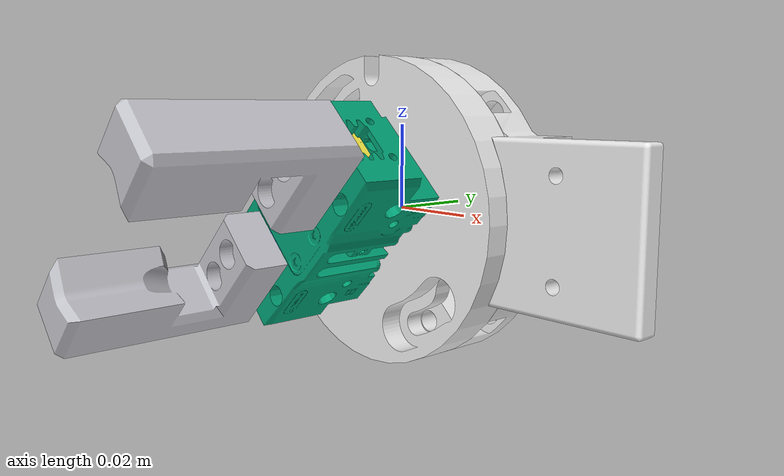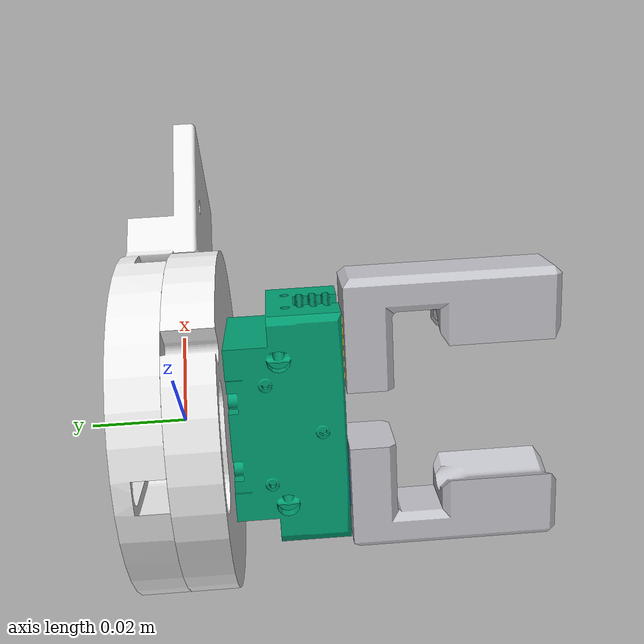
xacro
<?xml version="1.0" ?>
<robot name="hand" xmlns:xacro="http://www.ros.org/wiki/xacro" >

  <link name="fixation_link">
    <visual>
      <geometry>
        <mesh filename="package://staubli_tx2_60l_moveit/meshes/hand/Outil_Fixation_Bride_Robot_CapteurRef.stl" scale="0.001 0.001 0.001"/>
      </geometry>
      <material name="white"/>
    </visual>
    <collision>
      <geometry>
        <mesh filename="package://staubli_tx2_60l_moveit/meshes/hand/Outil_Fixation_Bride_Robot_CapteurRef.stl" scale="0.001 0.001 0.001"/>
      </geometry>
    </collision>
  </link>
 <link name="interface_link">
    <visual>
      <geometry>
        <mesh filename="package://staubli_tx2_60l_moveit/meshes/hand/Outil_Pince_Interface_PGNPlus40_EGP40.stl" scale="0.001 0.001 0.001"/>
      </geometry>
      <material name="white"/>
    </visual>
    <collision>
      <geometry>
        <mesh filename="package://staubli_tx2_60l_moveit/meshes/hand/Outil_Pince_Interface_PGNPlus40_EGP40.stl" scale="0.001 0.001 0.001"/>
      </geometry>
    </collision>
  </link>
  <link name="end_effector_link">
    <visual>
      <geometry>
        <mesh filename="package://staubli_tx2_60l_moveit/meshes/hand/SCHUNK_PGN_plus_P_40.stl" scale="0.001 0.001 0.001"/>
      </geometry>
      <material name="pale_oyster"/>
    </visual>
    <collision>
      <geometry>
        <mesh filename="package://staubli_tx2_60l_moveit/meshes/hand/SCHUNK_PGN_plus_P_40.stl" scale="0.001 0.001 0.001"/>
      </geometry>
    </collision>
  </link>
  <link name="adaptater1_link">
    <visual>
      <geometry>
        <mesh filename="package://staubli_tx2_60l_moveit/meshes/hand/adaptater_mors_PNG_plus_P_40.stl" scale="0.001 0.001 0.001"/>
      </geometry>
      <material name="pale_oyster"/>
    </visual>
    <collision>
      <geometry>
        <mesh filename="package://staubli_tx2_60l_moveit/meshes/hand/adaptater_mors_PNG_plus_P_40.stl" scale="0.001 0.001 0.001"/>
      </geometry>
    </collision>
  </link>
  <link name="adaptater2_link">
    <visual>
      <geometry>
        <mesh filename="package://staubli_tx2_60l_moveit/meshes/hand/adaptater_mors_PNG_plus_P_40.stl" scale="0.001 0.001 0.001"/>
      </geometry>
      <material name="pale_oyster"/>
    </visual>
    <collision>
      <geometry>
        <mesh filename="package://staubli_tx2_60l_moveit/meshes/hand/adaptater_mors_PNG_plus_P_40.stl" scale="0.001 0.001 0.001"/>
      </geometry>
    </collision>
  </link>
  <link name="mors1_link">
    <visual>
      <geometry>
        <mesh filename="package://staubli_tx2_60l_moveit/meshes/hand/Outil_Pince_Pneumatique_Mors_PGN-Plus-40.stl" scale="0.001 0.001 0.001"/>
      </geometry>
      <material name="silver"/>
    </visual>
    <collision>
      <geometry>
        <mesh filename="package://staubli_tx2_60l_moveit/meshes/hand/Outil_Pince_Pneumatique_Mors_PGN-Plus-40.stl" scale="0.001 0.001 0.001"/>
      </geometry>
    </collision>
  </link>
  <link name="mors2_link">
    <visual>
      <geometry>
        <mesh filename="package://staubli_tx2_60l_moveit/meshes/hand/Outil_Pince_Pneumatique_Mors_PGN-Plus-40.stl" scale="0.001 0.001 0.001"/>
      </geometry>
      <material name="silver"/>
    </visual>
    <collision>
      <geometry>
        <mesh filename="package://staubli_tx2_60l_moveit/meshes/hand/Outil_Pince_Pneumatique_Mors_PGN-Plus-40.stl" scale="0.001 0.001 0.001"/>
      </geometry>
    </collision>
  </link>

  <!-- Création des joints  -->
  <joint name="fixation_interface" type="fixed">
      <origin rpy="3.141592 0 0" xyz="0 0.004 0" />
      <parent link="fixation_link" />
      <child link="interface_link" />
  </joint>
  <joint name="interface_end_effector" type="fixed">
      <origin rpy="0 0.785398 0" xyz="0 0.014 0" />
      <parent link="interface_link" />
      <child link="end_effector_link" />
  </joint>
  <joint name="end_effector_adaptater1" type="prismatic">
      <origin rpy="0 0 0" xyz="0 0 0" />
      <parent link="end_effector_link" />
      <child link="adaptater1_link" />
      <limit effort="1000.0" lower="0" upper="0.0099" velocity="0.5"/>
  </joint>
  <joint name="end_effector_adaptater2" type="prismatic">
      <origin rpy="0 3.1415 0" xyz="0 0 0" />
      <parent link="end_effector_link" />
      <child link="adaptater2_link" />
      <limit effort="1000.0" lower="0" upper="0.0099" velocity="0.5"/>
  </joint>
  <joint name="adaptater1_mors1" type="fixed">
      <origin rpy="0 3.1415 0" xyz="0.0303 0.0247 -0.0073" />
      <parent link="adaptater1_link" />
      <child link="mors1_link" />
  </joint>
  <joint name="adaptater2_mors2" type="fixed">
      <origin rpy="0 3.1415 0" xyz="0.0303 0.0247 -0.0073" />
      <parent link="adaptater2_link" />
      <child link="mors2_link" />
  </joint>
</robot>
